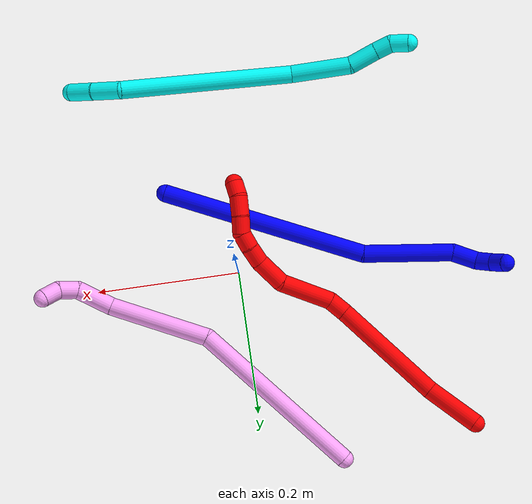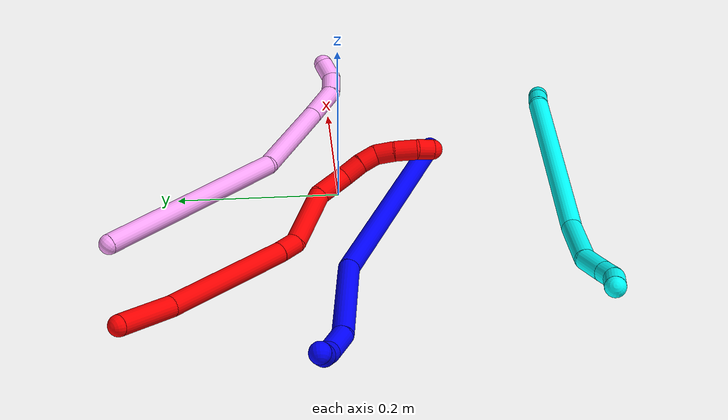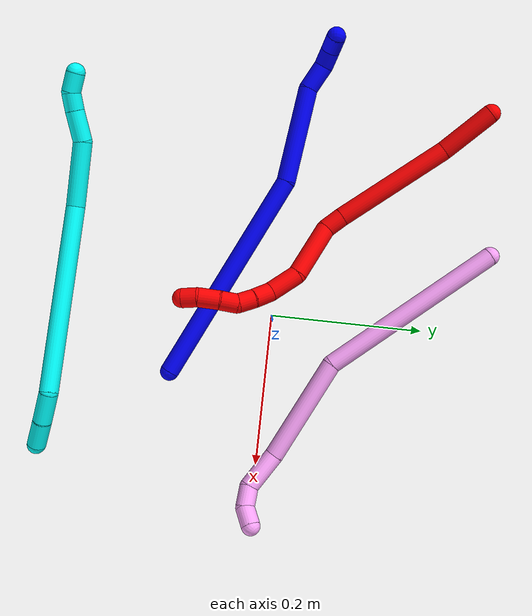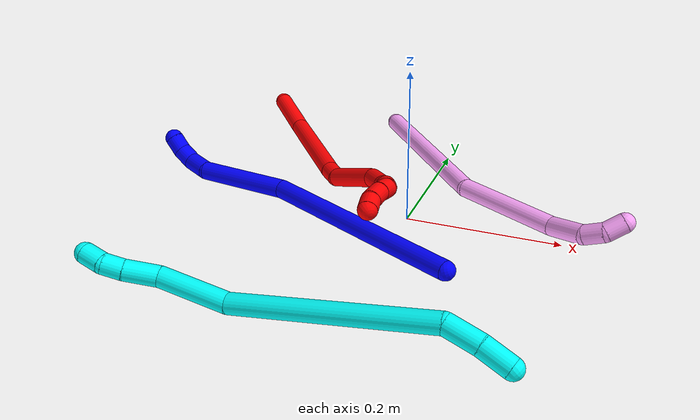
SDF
<sdf version="1.7">
 <world name="default">
  <plugin name="TubeGeneratorPlugin" filename="libtube_generator_plugin.so"/>
  <model name="photoneo_s_sensor">
   <static>1</static>
   <pose>0 0 2 1.57079 1.57079 3.14159</pose>
   <link name="link">
    <inertial><mass>0.1</mass></inertial>
    <sensor name="sensor" type="depth">
     <update_rate>30</update_rate>
     <camera>
      <horizontal_fov>1.22</horizontal_fov>
      <image><width>1920</width><height>1200</height><format>B8G8R8</format></image>
      <clip><near>0.1</near><far>4</far></clip>
      <depth_camera><output>points</output></depth_camera>
     </camera>
     <plugin name="camera_plugin" filename="libgazebo_ros_depth_camera.so">
      <baseline>0.2</baseline>
      <alwaysOn>1</alwaysOn>
      <updateRate>0.0</updateRate>
      <cameraName>camera_ir</cameraName>
      <imageTopicName>/camera/color/image_raw</imageTopicName>
      <cameraInfoTopicName>/camera/color/camera_info</cameraInfoTopicName>
      <depthImageTopicName>/camera/depth/image_raw</depthImageTopicName>
      <depthImageCameraInfoTopicName>/camera/depth/camera_info</depthImageCameraInfoTopicName>
      <pointCloudTopicName>/camera/depth/points</pointCloudTopicName>
      <frameName>fr_optical</frameName>
      <pointCloudCutoff>0.1</pointCloudCutoff>
      <pointCloudCutoffMax>2.0</pointCloudCutoffMax>
      <distortionK1>0</distortionK1>
      <distortionK2>0</distortionK2>
      <distortionK3>0</distortionK3>
      <distortionT1>0</distortionT1>
      <distortionT2>0</distortionT2>
      <CxPrime>0</CxPrime>
      <Cx>0</Cx>
      <Cy>0</Cy>
      <focalLength>0</focalLength>
      <hackBaseline>0</hackBaseline>
     </plugin>
    </sensor>
   </link>
  </model>
  <gravity>0 0 -9.8</gravity>
  <magnetic_field>6e-06 2.3e-05 -4.2e-05</magnetic_field>
  <atmosphere type="adiabatic"/>
  <physics name="default_physics" default="0" type="ode">
   <max_step_size>0.003</max_step_size>
   <real_time_factor>1</real_time_factor>
   <real_time_update_rate>1000</real_time_update_rate>
   <max_contacts>10000</max_contacts>
   <ode>
    <solver>
     <type>quick</type>
     <iters>100</iters>
     <sor>1.3</sor>
     <use_dynamic_moi_rescaling>0</use_dynamic_moi_rescaling>
    </solver>
    <constraints>
     <contact_max_correcting_vel>0</contact_max_correcting_vel>
     <contact_surface_layer>0.001</contact_surface_layer>
     <cfm>0</cfm>
     <erp>0.2</erp>
    </constraints>
   </ode>
  </physics>
  <scene><ambient>0.4 0.4 0.4 1</ambient><background>0.7 0.7 0.7 1</background><shadows>0</shadows></scene>
  <audio><device>default</device></audio>
  <spherical_coordinates>
   <surface_model>EARTH_WGS84</surface_model>
   <latitude_deg>0</latitude_deg>
   <longitude_deg>0</longitude_deg>
   <elevation>0</elevation>
   <heading_deg>0</heading_deg>
  </spherical_coordinates>
  <model name="bin">
   <static>1</static>
   <link name="bottom">
    <collision name="collision-bottom">
     <pose>0 0 -0.01 0 -0 0</pose>
     <geometry><box><size>0.8 0.6 0.02</size></box></geometry>
     <surface>
      <friction><ode><mu>100</mu><mu2>100</mu2></ode></friction>
      <contact><collide_bitmask>65535</collide_bitmask></contact>
     </surface>
    </collision>
   </link>
   <link name="west_wall">
    <collision name="collision-west_wall">
     <pose>-0.41 0 0.1 0 -0 0</pose>
     <geometry><box><size>0.02 0.6 0.2</size></box></geometry>
     <surface>
      <friction><ode><mu>100</mu><mu2>100</mu2></ode></friction>
      <contact><collide_bitmask>65535</collide_bitmask></contact>
     </surface>
    </collision>
   </link>
   <link name="east_wall">
    <collision name="collision-east_wall">
     <pose>0.41 0 0.1 0 -0 0</pose>
     <geometry><box><size>0.02 0.6 0.2</size></box></geometry>
     <surface>
      <friction><ode><mu>100</mu><mu2>100</mu2></ode></friction>
      <contact><collide_bitmask>65535</collide_bitmask></contact>
     </surface>
    </collision>
   </link>
   <link name="south_wall">
    <collision name="collision-south_wall">
     <pose>0 -0.31 0.1 0 -0 0</pose>
     <geometry><box><size>0.8 0.02 0.2</size></box></geometry>
     <surface>
      <friction><ode><mu>100</mu><mu2>100</mu2></ode></friction>
      <contact><collide_bitmask>65535</collide_bitmask></contact>
     </surface>
    </collision>
   </link>
   <link name="north_wall">
    <collision name="collision-north_wall">
     <pose>0 0.31 0.1 0 -0 0</pose>
     <geometry><box><size>0.8 0.02 0.2</size></box></geometry>
     <surface>
      <friction><ode><mu>100</mu><mu2>100</mu2></ode></friction>
      <contact><collide_bitmask>65535</collide_bitmask></contact>
     </surface>
    </collision>
   </link>
  </model>
  <model name="1">
   <static>0</static>
   <link name="1">
    <collision name="collision-cylinder-e_1_1_4">
     <pose>-0.061582 0.050715 0.123086 -0.39083 -0.433272 0.087075</pose>
     <geometry><cylinder><radius>0.0125</radius><length>0.293357</length></cylinder></geometry>
     <surface>
      <friction><ode><mu>1.16</mu><mu2>1.16</mu2><slip1>0</slip1><slip2>0</slip2></ode></friction>
      <contact><ode><kp>1e+06</kp><kd>1</kd><max_vel>0</max_vel><min_depth>0.001</min_depth></ode></contact>
     </surface>
    </collision>
    <visual name="visual-cylinder-e_1_1_4">
     <pose>-0.061582 0.050715 0.123086 -0.39083 -0.433272 0.087075</pose>
     <geometry><cylinder><radius>0.0125</radius><length>0.293357</length></cylinder></geometry>
     <material><ambient>0 0 1 1</ambient></material>
    </visual>
    <collision name="collision-cylinder-e_2_4_5">
     <pose>-0.130535 0.125068 0.304031 -0.387868 -0.117395 0.023082</pose>
     <geometry><cylinder><radius>0.0125</radius><length>0.125868</length></cylinder></geometry>
     <surface>
      <friction><ode><mu>1.16</mu><mu2>1.16</mu2><slip1>0</slip1><slip2>0</slip2></ode></friction>
      <contact><ode><kp>1e+06</kp><kd>1</kd><max_vel>0</max_vel><min_depth>0.001</min_depth></ode></contact>
     </surface>
    </collision>
    <visual name="visual-cylinder-e_2_4_5">
     <pose>-0.130535 0.125068 0.304031 -0.387868 -0.117395 0.023082</pose>
     <geometry><cylinder><radius>0.0125</radius><length>0.125868</length></cylinder></geometry>
     <material><ambient>0 0 1 1</ambient></material>
    </visual>
    <collision name="collision-cylinder-e_3_5_6">
     <pose>-0.146173 0.155853 0.376236 -0.462123 -0.476144 0.114061</pose>
     <geometry><cylinder><radius>0.0125</radius><length>0.03607</length></cylinder></geometry>
     <surface>
      <friction><ode><mu>1.16</mu><mu2>1.16</mu2><slip1>0</slip1><slip2>0</slip2></ode></friction>
      <contact><ode><kp>1e+06</kp><kd>1</kd><max_vel>0</max_vel><min_depth>0.001</min_depth></ode></contact>
     </surface>
    </collision>
    <visual name="visual-cylinder-e_3_5_6">
     <pose>-0.146173 0.155853 0.376236 -0.462123 -0.476144 0.114061</pose>
     <geometry><cylinder><radius>0.0125</radius><length>0.03607</length></cylinder></geometry>
     <material><ambient>0 0 1 1</ambient></material>
    </visual>
    <collision name="collision-cylinder-e_4_6_7">
     <pose>-0.157507 0.171633 0.397401 -0.902405 -0.271995 0.132417</pose>
     <geometry><cylinder><radius>0.0125</radius><length>0.02284</length></cylinder></geometry>
     <surface>
      <friction><ode><mu>1.16</mu><mu2>1.16</mu2><slip1>0</slip1><slip2>0</slip2></ode></friction>
      <contact><ode><kp>1e+06</kp><kd>1</kd><max_vel>0</max_vel><min_depth>0.001</min_depth></ode></contact>
     </surface>
    </collision>
    <visual name="visual-cylinder-e_4_6_7">
     <pose>-0.157507 0.171633 0.397401 -0.902405 -0.271995 0.132417</pose>
     <geometry><cylinder><radius>0.0125</radius><length>0.02284</length></cylinder></geometry>
     <material><ambient>0 0 1 1</ambient></material>
    </visual>
    <collision name="collision-cylinder-e_5_7_2">
     <pose>-0.162929 0.190188 0.40816 -1.19259 -0.217012 0.147601</pose>
     <geometry><cylinder><radius>0.0125</radius><length>0.021865</length></cylinder></geometry>
     <surface>
      <friction><ode><mu>1.16</mu><mu2>1.16</mu2><slip1>0</slip1><slip2>0</slip2></ode></friction>
      <contact><ode><kp>1e+06</kp><kd>1</kd><max_vel>0</max_vel><min_depth>0.001</min_depth></ode></contact>
     </surface>
    </collision>
    <visual name="visual-cylinder-e_5_7_2">
     <pose>-0.162929 0.190188 0.40816 -1.19259 -0.217012 0.147601</pose>
     <geometry><cylinder><radius>0.0125</radius><length>0.021865</length></cylinder></geometry>
     <material><ambient>0 0 1 1</ambient></material>
    </visual>
    <collision name="collision-sphere-2">
     <pose>-0.165283 0.20011 0.412103 0 -0 0</pose>
     <geometry><sphere><radius>0.0125</radius></sphere></geometry>
     <surface>
      <friction><ode><mu>1.16</mu><mu2>1.16</mu2><slip1>0</slip1><slip2>0</slip2></ode></friction>
      <contact><ode><kp>1e+06</kp><kd>1</kd><max_vel>0</max_vel><min_depth>0.001</min_depth></ode></contact>
     </surface>
    </collision>
    <visual name="visual-sphere-2">
     <pose>-0.165283 0.20011 0.412103 0 -0 0</pose>
     <geometry><sphere><radius>0.0125</radius></sphere></geometry>
     <material><ambient>0 0 1 1</ambient></material>
    </visual>
    <collision name="collision-sphere-7">
     <pose>-0.160575 0.180266 0.404218 0 -0 0</pose>
     <geometry><sphere><radius>0.0125</radius></sphere></geometry>
     <surface>
      <friction><ode><mu>1.16</mu><mu2>1.16</mu2><slip1>0</slip1><slip2>0</slip2></ode></friction>
      <contact><ode><kp>1e+06</kp><kd>1</kd><max_vel>0</max_vel><min_depth>0.001</min_depth></ode></contact>
     </surface>
    </collision>
    <visual name="visual-sphere-7">
     <pose>-0.160575 0.180266 0.404218 0 -0 0</pose>
     <geometry><sphere><radius>0.0125</radius></sphere></geometry>
     <material><ambient>0 0 1 1</ambient></material>
    </visual>
    <collision name="collision-sphere-6">
     <pose>-0.154439 0.163 0.390584 0 -0 0</pose>
     <geometry><sphere><radius>0.0125</radius></sphere></geometry>
     <surface>
      <friction><ode><mu>1.16</mu><mu2>1.16</mu2><slip1>0</slip1><slip2>0</slip2></ode></friction>
      <contact><ode><kp>1e+06</kp><kd>1</kd><max_vel>0</max_vel><min_depth>0.001</min_depth></ode></contact>
     </surface>
    </collision>
    <visual name="visual-sphere-6">
     <pose>-0.154439 0.163 0.390584 0 -0 0</pose>
     <geometry><sphere><radius>0.0125</radius></sphere></geometry>
     <material><ambient>0 0 1 1</ambient></material>
    </visual>
    <collision name="collision-sphere-5">
     <pose>-0.137906 0.148707 0.361889 0 -0 0</pose>
     <geometry><sphere><radius>0.0125</radius></sphere></geometry>
     <surface>
      <friction><ode><mu>1.16</mu><mu2>1.16</mu2><slip1>0</slip1><slip2>0</slip2></ode></friction>
      <contact><ode><kp>1e+06</kp><kd>1</kd><max_vel>0</max_vel><min_depth>0.001</min_depth></ode></contact>
     </surface>
    </collision>
    <visual name="visual-sphere-5">
     <pose>-0.137906 0.148707 0.361889 0 -0 0</pose>
     <geometry><sphere><radius>0.0125</radius></sphere></geometry>
     <material><ambient>0 0 1 1</ambient></material>
    </visual>
    <collision name="collision-sphere-1">
     <geometry><sphere><radius>0.0125</radius></sphere></geometry>
     <surface>
      <friction><ode><mu>1.16</mu><mu2>1.16</mu2><slip1>0</slip1><slip2>0</slip2></ode></friction>
      <contact><ode><kp>1e+06</kp><kd>1</kd><max_vel>0</max_vel><min_depth>0.001</min_depth></ode></contact>
     </surface>
    </collision>
    <visual name="visual-sphere-1">
     <geometry><sphere><radius>0.0125</radius></sphere></geometry>
     <material><ambient>0 0 1 1</ambient></material>
    </visual>
    <collision name="collision-sphere-4">
     <pose>-0.123164 0.10143 0.246173 0 -0 0</pose>
     <geometry><sphere><radius>0.0125</radius></sphere></geometry>
     <surface>
      <friction><ode><mu>1.16</mu><mu2>1.16</mu2><slip1>0</slip1><slip2>0</slip2></ode></friction>
      <contact><ode><kp>1e+06</kp><kd>1</kd><max_vel>0</max_vel><min_depth>0.001</min_depth></ode></contact>
     </surface>
    </collision>
    <visual name="visual-sphere-4">
     <pose>-0.123164 0.10143 0.246173 0 -0 0</pose>
     <geometry><sphere><radius>0.0125</radius></sphere></geometry>
     <material><ambient>0 0 1 1</ambient></material>
    </visual>
    <inertial>
     <pose>-0.093856 0.08864 0.211896 0 -0 0</pose>
     <mass>0.5</mass>
     <inertia>
      <ixx>0.00225</ixx>
      <ixy>0</ixy>
      <ixz>0</ixz>
      <iyy>0.002331</iyy>
      <iyz>0</iyz>
      <izz>0.000143</izz>
     </inertia>
    </inertial>
   </link>
   <pose>0.087214 -0.125843 0.012425 1.9583 -0.008489 -1.58088</pose>
  </model>
  <model name="2">
   <static>0</static>
   <link name="2">
    <collision name="collision-cylinder-e_1_1_4">
     <pose>-0.003137 0.001466 -0.037999 -3.10304 -0.082315 2.26587</pose>
     <geometry><cylinder><radius>0.0125</radius><length>0.076312</length></cylinder></geometry>
     <surface>
      <friction><ode><mu>1.16</mu><mu2>1.16</mu2><slip1>0</slip1><slip2>0</slip2></ode></friction>
      <contact><ode><kp>1e+06</kp><kd>1</kd><max_vel>0</max_vel><min_depth>0.001</min_depth></ode></contact>
     </surface>
    </collision>
    <visual name="visual-cylinder-e_1_1_4">
     <pose>-0.003137 0.001466 -0.037999 -3.10304 -0.082315 2.26587</pose>
     <geometry><cylinder><radius>0.0125</radius><length>0.076312</length></cylinder></geometry>
     <material><ambient>1 0 0 1</ambient></material>
    </visual>
    <collision name="collision-cylinder-e_2_4_5">
     <pose>0.00393 0.00952 -0.155042 -3.05843 0.127955 -1.98965</pose>
     <geometry><cylinder><radius>0.0125</radius><length>0.159944</length></cylinder></geometry>
     <surface>
      <friction><ode><mu>1.16</mu><mu2>1.16</mu2><slip1>0</slip1><slip2>0</slip2></ode></friction>
      <contact><ode><kp>1e+06</kp><kd>1</kd><max_vel>0</max_vel><min_depth>0.001</min_depth></ode></contact>
     </surface>
    </collision>
    <visual name="visual-cylinder-e_2_4_5">
     <pose>0.00393 0.00952 -0.155042 -3.05843 0.127955 -1.98965</pose>
     <geometry><cylinder><radius>0.0125</radius><length>0.159944</length></cylinder></geometry>
     <material><ambient>1 0 0 1</ambient></material>
    </visual>
    <collision name="collision-cylinder-e_3_5_6">
     <pose>0.015832 0.018179 -0.247026 -2.98294 0.12872 -1.36255</pose>
     <geometry><cylinder><radius>0.0125</radius><length>0.026428</length></cylinder></geometry>
     <surface>
      <friction><ode><mu>1.16</mu><mu2>1.16</mu2><slip1>0</slip1><slip2>0</slip2></ode></friction>
      <contact><ode><kp>1e+06</kp><kd>1</kd><max_vel>0</max_vel><min_depth>0.001</min_depth></ode></contact>
     </surface>
    </collision>
    <visual name="visual-cylinder-e_3_5_6">
     <pose>0.015832 0.018179 -0.247026 -2.98294 0.12872 -1.36255</pose>
     <geometry><cylinder><radius>0.0125</radius><length>0.026428</length></cylinder></geometry>
     <material><ambient>1 0 0 1</ambient></material>
    </visual>
    <collision name="collision-cylinder-e_4_6_7">
     <pose>0.023065 0.042535 -0.290258 -2.50732 0.146207 -0.439061</pose>
     <geometry><cylinder><radius>0.0125</radius><length>0.076023</length></cylinder></geometry>
     <surface>
      <friction><ode><mu>1.16</mu><mu2>1.16</mu2><slip1>0</slip1><slip2>0</slip2></ode></friction>
      <contact><ode><kp>1e+06</kp><kd>1</kd><max_vel>0</max_vel><min_depth>0.001</min_depth></ode></contact>
     </surface>
    </collision>
    <visual name="visual-cylinder-e_4_6_7">
     <pose>0.023065 0.042535 -0.290258 -2.50732 0.146207 -0.439061</pose>
     <geometry><cylinder><radius>0.0125</radius><length>0.076023</length></cylinder></geometry>
     <material><ambient>1 0 0 1</ambient></material>
    </visual>
    <collision name="collision-cylinder-e_5_7_8">
     <pose>0.034946 0.069238 -0.340086 -2.91921 0.306676 -1.89037</pose>
     <geometry><cylinder><radius>0.0125</radius><length>0.042021</length></cylinder></geometry>
     <surface>
      <friction><ode><mu>1.16</mu><mu2>1.16</mu2><slip1>0</slip1><slip2>0</slip2></ode></friction>
      <contact><ode><kp>1e+06</kp><kd>1</kd><max_vel>0</max_vel><min_depth>0.001</min_depth></ode></contact>
     </surface>
    </collision>
    <visual name="visual-cylinder-e_5_7_8">
     <pose>0.034946 0.069238 -0.340086 -2.91921 0.306676 -1.89037</pose>
     <geometry><cylinder><radius>0.0125</radius><length>0.042021</length></cylinder></geometry>
     <material><ambient>1 0 0 1</ambient></material>
    </visual>
    <collision name="collision-cylinder-e_6_8_9">
     <pose>0.048566 0.076026 -0.369918 -2.91525 0.603153 -2.44098</pose>
     <geometry><cylinder><radius>0.0125</radius><length>0.025657</length></cylinder></geometry>
     <surface>
      <friction><ode><mu>1.16</mu><mu2>1.16</mu2><slip1>0</slip1><slip2>0</slip2></ode></friction>
      <contact><ode><kp>1e+06</kp><kd>1</kd><max_vel>0</max_vel><min_depth>0.001</min_depth></ode></contact>
     </surface>
    </collision>
    <visual name="visual-cylinder-e_6_8_9">
     <pose>0.048566 0.076026 -0.369918 -2.91525 0.603153 -2.44098</pose>
     <geometry><cylinder><radius>0.0125</radius><length>0.025657</length></cylinder></geometry>
     <material><ambient>1 0 0 1</ambient></material>
    </visual>
    <collision name="collision-cylinder-e_7_9_10">
     <pose>0.061907 0.079039 -0.389628 -3.07355 0.57121 -2.9108</pose>
     <geometry><cylinder><radius>0.0125</radius><length>0.022435</length></cylinder></geometry>
     <surface>
      <friction><ode><mu>1.16</mu><mu2>1.16</mu2><slip1>0</slip1><slip2>0</slip2></ode></friction>
      <contact><ode><kp>1e+06</kp><kd>1</kd><max_vel>0</max_vel><min_depth>0.001</min_depth></ode></contact>
     </surface>
    </collision>
    <visual name="visual-cylinder-e_7_9_10">
     <pose>0.061907 0.079039 -0.389628 -3.07355 0.57121 -2.9108</pose>
     <geometry><cylinder><radius>0.0125</radius><length>0.022435</length></cylinder></geometry>
     <material><ambient>1 0 0 1</ambient></material>
    </visual>
    <collision name="collision-cylinder-e_8_10_11">
     <pose>0.075889 0.075488 -0.406682 2.63962 0.737511 1.96999</pose>
     <geometry><cylinder><radius>0.0125</radius><length>0.023547</length></cylinder></geometry>
     <surface>
      <friction><ode><mu>1.16</mu><mu2>1.16</mu2><slip1>0</slip1><slip2>0</slip2></ode></friction>
      <contact><ode><kp>1e+06</kp><kd>1</kd><max_vel>0</max_vel><min_depth>0.001</min_depth></ode></contact>
     </surface>
    </collision>
    <visual name="visual-cylinder-e_8_10_11">
     <pose>0.075889 0.075488 -0.406682 2.63962 0.737511 1.96999</pose>
     <geometry><cylinder><radius>0.0125</radius><length>0.023547</length></cylinder></geometry>
     <material><ambient>1 0 0 1</ambient></material>
    </visual>
    <collision name="collision-cylinder-e_9_11_12">
     <pose>0.091393 0.065582 -0.424307 2.62196 0.583013 1.69163</pose>
     <geometry><cylinder><radius>0.0125</radius><length>0.027563</length></cylinder></geometry>
     <surface>
      <friction><ode><mu>1.16</mu><mu2>1.16</mu2><slip1>0</slip1><slip2>0</slip2></ode></friction>
      <contact><ode><kp>1e+06</kp><kd>1</kd><max_vel>0</max_vel><min_depth>0.001</min_depth></ode></contact>
     </surface>
    </collision>
    <visual name="visual-cylinder-e_9_11_12">
     <pose>0.091393 0.065582 -0.424307 2.62196 0.583013 1.69163</pose>
     <geometry><cylinder><radius>0.0125</radius><length>0.027563</length></cylinder></geometry>
     <material><ambient>1 0 0 1</ambient></material>
    </visual>
    <collision name="collision-cylinder-e_10_12_2">
     <pose>0.102023 0.055875 -0.442982 2.71076 0.308031 1.23415</pose>
     <geometry><cylinder><radius>0.0125</radius><length>0.020071</length></cylinder></geometry>
     <surface>
      <friction><ode><mu>1.16</mu><mu2>1.16</mu2><slip1>0</slip1><slip2>0</slip2></ode></friction>
      <contact><ode><kp>1e+06</kp><kd>1</kd><max_vel>0</max_vel><min_depth>0.001</min_depth></ode></contact>
     </surface>
    </collision>
    <visual name="visual-cylinder-e_10_12_2">
     <pose>0.102023 0.055875 -0.442982 2.71076 0.308031 1.23415</pose>
     <geometry><cylinder><radius>0.0125</radius><length>0.020071</length></cylinder></geometry>
     <material><ambient>1 0 0 1</ambient></material>
    </visual>
    <collision name="collision-sphere-2">
     <pose>0.105065 0.051881 -0.451672 0 -0 0</pose>
     <geometry><sphere><radius>0.0125</radius></sphere></geometry>
     <surface>
      <friction><ode><mu>1.16</mu><mu2>1.16</mu2><slip1>0</slip1><slip2>0</slip2></ode></friction>
      <contact><ode><kp>1e+06</kp><kd>1</kd><max_vel>0</max_vel><min_depth>0.001</min_depth></ode></contact>
     </surface>
    </collision>
    <visual name="visual-sphere-2">
     <pose>0.105065 0.051881 -0.451672 0 -0 0</pose>
     <geometry><sphere><radius>0.0125</radius></sphere></geometry>
     <material><ambient>1 0 0 1</ambient></material>
    </visual>
    <collision name="collision-sphere-12">
     <pose>0.09898 0.059869 -0.434293 0 -0 0</pose>
     <geometry><sphere><radius>0.0125</radius></sphere></geometry>
     <surface>
      <friction><ode><mu>1.16</mu><mu2>1.16</mu2><slip1>0</slip1><slip2>0</slip2></ode></friction>
      <contact><ode><kp>1e+06</kp><kd>1</kd><max_vel>0</max_vel><min_depth>0.001</min_depth></ode></contact>
     </surface>
    </collision>
    <visual name="visual-sphere-12">
     <pose>0.09898 0.059869 -0.434293 0 -0 0</pose>
     <geometry><sphere><radius>0.0125</radius></sphere></geometry>
     <material><ambient>1 0 0 1</ambient></material>
    </visual>
    <collision name="collision-sphere-11">
     <pose>0.083806 0.071295 -0.414321 0 -0 0</pose>
     <geometry><sphere><radius>0.0125</radius></sphere></geometry>
     <surface>
      <friction><ode><mu>1.16</mu><mu2>1.16</mu2><slip1>0</slip1><slip2>0</slip2></ode></friction>
      <contact><ode><kp>1e+06</kp><kd>1</kd><max_vel>0</max_vel><min_depth>0.001</min_depth></ode></contact>
     </surface>
    </collision>
    <visual name="visual-sphere-11">
     <pose>0.083806 0.071295 -0.414321 0 -0 0</pose>
     <geometry><sphere><radius>0.0125</radius></sphere></geometry>
     <material><ambient>1 0 0 1</ambient></material>
    </visual>
    <collision name="collision-sphere-10">
     <pose>0.067972 0.07968 -0.399043 0 -0 0</pose>
     <geometry><sphere><radius>0.0125</radius></sphere></geometry>
     <surface>
      <friction><ode><mu>1.16</mu><mu2>1.16</mu2><slip1>0</slip1><slip2>0</slip2></ode></friction>
      <contact><ode><kp>1e+06</kp><kd>1</kd><max_vel>0</max_vel><min_depth>0.001</min_depth></ode></contact>
     </surface>
    </collision>
    <visual name="visual-sphere-10">
     <pose>0.067972 0.07968 -0.399043 0 -0 0</pose>
     <geometry><sphere><radius>0.0125</radius></sphere></geometry>
     <material><ambient>1 0 0 1</ambient></material>
    </visual>
    <collision name="collision-sphere-9">
     <pose>0.055843 0.078397 -0.380214 0 -0 0</pose>
     <geometry><sphere><radius>0.0125</radius></sphere></geometry>
     <surface>
      <friction><ode><mu>1.16</mu><mu2>1.16</mu2><slip1>0</slip1><slip2>0</slip2></ode></friction>
      <contact><ode><kp>1e+06</kp><kd>1</kd><max_vel>0</max_vel><min_depth>0.001</min_depth></ode></contact>
     </surface>
    </collision>
    <visual name="visual-sphere-9">
     <pose>0.055843 0.078397 -0.380214 0 -0 0</pose>
     <geometry><sphere><radius>0.0125</radius></sphere></geometry>
     <material><ambient>1 0 0 1</ambient></material>
    </visual>
    <collision name="collision-sphere-4">
     <pose>-0.006275 0.002931 -0.075997 0 -0 0</pose>
     <geometry><sphere><radius>0.0125</radius></sphere></geometry>
     <surface>
      <friction><ode><mu>1.16</mu><mu2>1.16</mu2><slip1>0</slip1><slip2>0</slip2></ode></friction>
      <contact><ode><kp>1e+06</kp><kd>1</kd><max_vel>0</max_vel><min_depth>0.001</min_depth></ode></contact>
     </surface>
    </collision>
    <visual name="visual-sphere-4">
     <pose>-0.006275 0.002931 -0.075997 0 -0 0</pose>
     <geometry><sphere><radius>0.0125</radius></sphere></geometry>
     <material><ambient>1 0 0 1</ambient></material>
    </visual>
    <collision name="collision-sphere-1">
     <geometry><sphere><radius>0.0125</radius></sphere></geometry>
     <surface>
      <friction><ode><mu>1.16</mu><mu2>1.16</mu2><slip1>0</slip1><slip2>0</slip2></ode></friction>
      <contact><ode><kp>1e+06</kp><kd>1</kd><max_vel>0</max_vel><min_depth>0.001</min_depth></ode></contact>
     </surface>
    </collision>
    <visual name="visual-sphere-1">
     <geometry><sphere><radius>0.0125</radius></sphere></geometry>
     <material><ambient>1 0 0 1</ambient></material>
    </visual>
    <collision name="collision-sphere-8">
     <pose>0.041289 0.073655 -0.359623 0 -0 0</pose>
     <geometry><sphere><radius>0.0125</radius></sphere></geometry>
     <surface>
      <friction><ode><mu>1.16</mu><mu2>1.16</mu2><slip1>0</slip1><slip2>0</slip2></ode></friction>
      <contact><ode><kp>1e+06</kp><kd>1</kd><max_vel>0</max_vel><min_depth>0.001</min_depth></ode></contact>
     </surface>
    </collision>
    <visual name="visual-sphere-8">
     <pose>0.041289 0.073655 -0.359623 0 -0 0</pose>
     <geometry><sphere><radius>0.0125</radius></sphere></geometry>
     <material><ambient>1 0 0 1</ambient></material>
    </visual>
    <collision name="collision-sphere-5">
     <pose>0.014135 0.016109 -0.234086 0 -0 0</pose>
     <geometry><sphere><radius>0.0125</radius></sphere></geometry>
     <surface>
      <friction><ode><mu>1.16</mu><mu2>1.16</mu2><slip1>0</slip1><slip2>0</slip2></ode></friction>
      <contact><ode><kp>1e+06</kp><kd>1</kd><max_vel>0</max_vel><min_depth>0.001</min_depth></ode></contact>
     </surface>
    </collision>
    <visual name="visual-sphere-5">
     <pose>0.014135 0.016109 -0.234086 0 -0 0</pose>
     <geometry><sphere><radius>0.0125</radius></sphere></geometry>
     <material><ambient>1 0 0 1</ambient></material>
    </visual>
    <collision name="collision-sphere-6">
     <pose>0.017528 0.02025 -0.259966 0 -0 0</pose>
     <geometry><sphere><radius>0.0125</radius></sphere></geometry>
     <surface>
      <friction><ode><mu>1.16</mu><mu2>1.16</mu2><slip1>0</slip1><slip2>0</slip2></ode></friction>
      <contact><ode><kp>1e+06</kp><kd>1</kd><max_vel>0</max_vel><min_depth>0.001</min_depth></ode></contact>
     </surface>
    </collision>
    <visual name="visual-sphere-6">
     <pose>0.017528 0.02025 -0.259966 0 -0 0</pose>
     <geometry><sphere><radius>0.0125</radius></sphere></geometry>
     <material><ambient>1 0 0 1</ambient></material>
    </visual>
    <collision name="collision-sphere-7">
     <pose>0.028603 0.06482 -0.320549 0 -0 0</pose>
     <geometry><sphere><radius>0.0125</radius></sphere></geometry>
     <surface>
      <friction><ode><mu>1.16</mu><mu2>1.16</mu2><slip1>0</slip1><slip2>0</slip2></ode></friction>
      <contact><ode><kp>1e+06</kp><kd>1</kd><max_vel>0</max_vel><min_depth>0.001</min_depth></ode></contact>
     </surface>
    </collision>
    <visual name="visual-sphere-7">
     <pose>0.028603 0.06482 -0.320549 0 -0 0</pose>
     <geometry><sphere><radius>0.0125</radius></sphere></geometry>
     <material><ambient>1 0 0 1</ambient></material>
    </visual>
    <inertial>
     <pose>0.026036 0.033377 -0.237955 0 -0 0</pose>
     <mass>0.5</mass>
     <inertia>
      <ixx>-0.000434</ixx>
      <ixy>0</ixy>
      <ixz>0</ixz>
      <iyy>-0.000152</iyy>
      <iyz>0</iyz>
      <izz>-0.000144</izz>
     </inertia>
    </inertial>
   </link>
   <pose>-0.292599 0.255623 0.031115 1.28909 -0.911422 -2.22363</pose>
  </model>
  <model name="3">
   <static>0</static>
   <link name="3">
    <collision name="collision-cylinder-e_1_1_4">
     <pose>-0.006401 -0.00142 -0.017113 3.05882 -0.356825 -2.69013</pose>
     <geometry><cylinder><radius>0.0125</radius><length>0.036651</length></cylinder></geometry>
     <surface>
      <friction><ode><mu>1.16</mu><mu2>1.16</mu2><slip1>0</slip1><slip2>0</slip2></ode></friction>
      <contact><ode><kp>1e+06</kp><kd>1</kd><max_vel>0</max_vel><min_depth>0.001</min_depth></ode></contact>
     </surface>
    </collision>
    <visual name="visual-cylinder-e_1_1_4">
     <pose>-0.006401 -0.00142 -0.017113 3.05882 -0.356825 -2.69013</pose>
     <geometry><cylinder><radius>0.0125</radius><length>0.036651</length></cylinder></geometry>
     <material><ambient>0.003922 1 0.996078 1</ambient></material>
    </visual>
    <collision name="collision-cylinder-e_2_4_5">
     <pose>-0.0222 -0.003684 -0.05286 3.09628 -0.466687 -2.95149</pose>
     <geometry><cylinder><radius>0.0125</radius><length>0.041776</length></cylinder></geometry>
     <surface>
      <friction><ode><mu>1.16</mu><mu2>1.16</mu2><slip1>0</slip1><slip2>0</slip2></ode></friction>
      <contact><ode><kp>1e+06</kp><kd>1</kd><max_vel>0</max_vel><min_depth>0.001</min_depth></ode></contact>
     </surface>
    </collision>
    <visual name="visual-cylinder-e_2_4_5">
     <pose>-0.0222 -0.003684 -0.05286 3.09628 -0.466687 -2.95149</pose>
     <geometry><cylinder><radius>0.0125</radius><length>0.041776</length></cylinder></geometry>
     <material><ambient>0.003922 1 0.996078 1</ambient></material>
    </visual>
    <collision name="collision-cylinder-e_3_5_6">
     <pose>-0.125739 0.010885 -0.148546 -2.94414 -0.875261 2.72438</pose>
     <geometry><cylinder><radius>0.0125</radius><length>0.245249</length></cylinder></geometry>
     <surface>
      <friction><ode><mu>1.16</mu><mu2>1.16</mu2><slip1>0</slip1><slip2>0</slip2></ode></friction>
      <contact><ode><kp>1e+06</kp><kd>1</kd><max_vel>0</max_vel><min_depth>0.001</min_depth></ode></contact>
     </surface>
    </collision>
    <visual name="visual-cylinder-e_3_5_6">
     <pose>-0.125739 0.010885 -0.148546 -2.94414 -0.875261 2.72438</pose>
     <geometry><cylinder><radius>0.0125</radius><length>0.245249</length></cylinder></geometry>
     <material><ambient>0.003922 1 0.996078 1</ambient></material>
    </visual>
    <collision name="collision-cylinder-e_4_6_7">
     <pose>-0.243432 0.030351 -0.261354 -3.02876 -0.579536 2.76721</pose>
     <geometry><cylinder><radius>0.0125</radius><length>0.086018</length></cylinder></geometry>
     <surface>
      <friction><ode><mu>1.16</mu><mu2>1.16</mu2><slip1>0</slip1><slip2>0</slip2></ode></friction>
      <contact><ode><kp>1e+06</kp><kd>1</kd><max_vel>0</max_vel><min_depth>0.001</min_depth></ode></contact>
     </surface>
    </collision>
    <visual name="visual-cylinder-e_4_6_7">
     <pose>-0.243432 0.030351 -0.261354 -3.02876 -0.579536 2.76721</pose>
     <geometry><cylinder><radius>0.0125</radius><length>0.086018</length></cylinder></geometry>
     <material><ambient>0.003922 1 0.996078 1</ambient></material>
    </visual>
    <collision name="collision-cylinder-e_5_7_8">
     <pose>-0.276101 0.043309 -0.313059 -2.63225 -0.4629 1.47148</pose>
     <geometry><cylinder><radius>0.0125</radius><length>0.040829</length></cylinder></geometry>
     <surface>
      <friction><ode><mu>1.16</mu><mu2>1.16</mu2><slip1>0</slip1><slip2>0</slip2></ode></friction>
      <contact><ode><kp>1e+06</kp><kd>1</kd><max_vel>0</max_vel><min_depth>0.001</min_depth></ode></contact>
     </surface>
    </collision>
    <visual name="visual-cylinder-e_5_7_8">
     <pose>-0.276101 0.043309 -0.313059 -2.63225 -0.4629 1.47148</pose>
     <geometry><cylinder><radius>0.0125</radius><length>0.040829</length></cylinder></geometry>
     <material><ambient>0.003922 1 0.996078 1</ambient></material>
    </visual>
    <collision name="collision-cylinder-e_6_8_9">
     <pose>-0.289815 0.056525 -0.339136 -2.73937 -0.395604 1.55377</pose>
     <geometry><cylinder><radius>0.0125</radius><length>0.023859</length></cylinder></geometry>
     <surface>
      <friction><ode><mu>1.16</mu><mu2>1.16</mu2><slip1>0</slip1><slip2>0</slip2></ode></friction>
      <contact><ode><kp>1e+06</kp><kd>1</kd><max_vel>0</max_vel><min_depth>0.001</min_depth></ode></contact>
     </surface>
    </collision>
    <visual name="visual-cylinder-e_6_8_9">
     <pose>-0.289815 0.056525 -0.339136 -2.73937 -0.395604 1.55377</pose>
     <geometry><cylinder><radius>0.0125</radius><length>0.023859</length></cylinder></geometry>
     <material><ambient>0.003922 1 0.996078 1</ambient></material>
    </visual>
    <collision name="collision-cylinder-e_7_9_2">
     <pose>-0.300688 0.060213 -0.360415 3.08592 -0.512055 -2.92966</pose>
     <geometry><cylinder><radius>0.0125</radius><length>0.025618</length></cylinder></geometry>
     <surface>
      <friction><ode><mu>1.16</mu><mu2>1.16</mu2><slip1>0</slip1><slip2>0</slip2></ode></friction>
      <contact><ode><kp>1e+06</kp><kd>1</kd><max_vel>0</max_vel><min_depth>0.001</min_depth></ode></contact>
     </surface>
    </collision>
    <visual name="visual-cylinder-e_7_9_2">
     <pose>-0.300688 0.060213 -0.360415 3.08592 -0.512055 -2.92966</pose>
     <geometry><cylinder><radius>0.0125</radius><length>0.025618</length></cylinder></geometry>
     <material><ambient>0.003922 1 0.996078 1</ambient></material>
    </visual>
    <collision name="collision-sphere-2">
     <pose>-0.306964 0.059591 -0.371563 0 -0 0</pose>
     <geometry><sphere><radius>0.0125</radius></sphere></geometry>
     <surface>
      <friction><ode><mu>1.16</mu><mu2>1.16</mu2><slip1>0</slip1><slip2>0</slip2></ode></friction>
      <contact><ode><kp>1e+06</kp><kd>1</kd><max_vel>0</max_vel><min_depth>0.001</min_depth></ode></contact>
     </surface>
    </collision>
    <visual name="visual-sphere-2">
     <pose>-0.306964 0.059591 -0.371563 0 -0 0</pose>
     <geometry><sphere><radius>0.0125</radius></sphere></geometry>
     <material><ambient>0.003922 1 0.996078 1</ambient></material>
    </visual>
    <collision name="collision-sphere-9">
     <pose>-0.294412 0.060834 -0.349266 0 -0 0</pose>
     <geometry><sphere><radius>0.0125</radius></sphere></geometry>
     <surface>
      <friction><ode><mu>1.16</mu><mu2>1.16</mu2><slip1>0</slip1><slip2>0</slip2></ode></friction>
      <contact><ode><kp>1e+06</kp><kd>1</kd><max_vel>0</max_vel><min_depth>0.001</min_depth></ode></contact>
     </surface>
    </collision>
    <visual name="visual-sphere-9">
     <pose>-0.294412 0.060834 -0.349266 0 -0 0</pose>
     <geometry><sphere><radius>0.0125</radius></sphere></geometry>
     <material><ambient>0.003922 1 0.996078 1</ambient></material>
    </visual>
    <collision name="collision-sphere-4">
     <pose>-0.012802 -0.00284 -0.034225 0 -0 0</pose>
     <geometry><sphere><radius>0.0125</radius></sphere></geometry>
     <surface>
      <friction><ode><mu>1.16</mu><mu2>1.16</mu2><slip1>0</slip1><slip2>0</slip2></ode></friction>
      <contact><ode><kp>1e+06</kp><kd>1</kd><max_vel>0</max_vel><min_depth>0.001</min_depth></ode></contact>
     </surface>
    </collision>
    <visual name="visual-sphere-4">
     <pose>-0.012802 -0.00284 -0.034225 0 -0 0</pose>
     <geometry><sphere><radius>0.0125</radius></sphere></geometry>
     <material><ambient>0.003922 1 0.996078 1</ambient></material>
    </visual>
    <collision name="collision-sphere-1">
     <geometry><sphere><radius>0.0125</radius></sphere></geometry>
     <surface>
      <friction><ode><mu>1.16</mu><mu2>1.16</mu2><slip1>0</slip1><slip2>0</slip2></ode></friction>
      <contact><ode><kp>1e+06</kp><kd>1</kd><max_vel>0</max_vel><min_depth>0.001</min_depth></ode></contact>
     </surface>
    </collision>
    <visual name="visual-sphere-1">
     <geometry><sphere><radius>0.0125</radius></sphere></geometry>
     <material><ambient>0.003922 1 0.996078 1</ambient></material>
    </visual>
    <collision name="collision-sphere-8">
     <pose>-0.285217 0.052216 -0.329006 0 -0 0</pose>
     <geometry><sphere><radius>0.0125</radius></sphere></geometry>
     <surface>
      <friction><ode><mu>1.16</mu><mu2>1.16</mu2><slip1>0</slip1><slip2>0</slip2></ode></friction>
      <contact><ode><kp>1e+06</kp><kd>1</kd><max_vel>0</max_vel><min_depth>0.001</min_depth></ode></contact>
     </surface>
    </collision>
    <visual name="visual-sphere-8">
     <pose>-0.285217 0.052216 -0.329006 0 -0 0</pose>
     <geometry><sphere><radius>0.0125</radius></sphere></geometry>
     <material><ambient>0.003922 1 0.996078 1</ambient></material>
    </visual>
    <collision name="collision-sphere-5">
     <pose>-0.031599 -0.004529 -0.071495 0 -0 0</pose>
     <geometry><sphere><radius>0.0125</radius></sphere></geometry>
     <surface>
      <friction><ode><mu>1.16</mu><mu2>1.16</mu2><slip1>0</slip1><slip2>0</slip2></ode></friction>
      <contact><ode><kp>1e+06</kp><kd>1</kd><max_vel>0</max_vel><min_depth>0.001</min_depth></ode></contact>
     </surface>
    </collision>
    <visual name="visual-sphere-5">
     <pose>-0.031599 -0.004529 -0.071495 0 -0 0</pose>
     <geometry><sphere><radius>0.0125</radius></sphere></geometry>
     <material><ambient>0.003922 1 0.996078 1</ambient></material>
    </visual>
    <collision name="collision-sphere-6">
     <pose>-0.219879 0.026299 -0.225596 0 -0 0</pose>
     <geometry><sphere><radius>0.0125</radius></sphere></geometry>
     <surface>
      <friction><ode><mu>1.16</mu><mu2>1.16</mu2><slip1>0</slip1><slip2>0</slip2></ode></friction>
      <contact><ode><kp>1e+06</kp><kd>1</kd><max_vel>0</max_vel><min_depth>0.001</min_depth></ode></contact>
     </surface>
    </collision>
    <visual name="visual-sphere-6">
     <pose>-0.219879 0.026299 -0.225596 0 -0 0</pose>
     <geometry><sphere><radius>0.0125</radius></sphere></geometry>
     <material><ambient>0.003922 1 0.996078 1</ambient></material>
    </visual>
    <collision name="collision-sphere-7">
     <pose>-0.266985 0.034402 -0.297112 0 -0 0</pose>
     <geometry><sphere><radius>0.0125</radius></sphere></geometry>
     <surface>
      <friction><ode><mu>1.16</mu><mu2>1.16</mu2><slip1>0</slip1><slip2>0</slip2></ode></friction>
      <contact><ode><kp>1e+06</kp><kd>1</kd><max_vel>0</max_vel><min_depth>0.001</min_depth></ode></contact>
     </surface>
    </collision>
    <visual name="visual-sphere-7">
     <pose>-0.266985 0.034402 -0.297112 0 -0 0</pose>
     <geometry><sphere><radius>0.0125</radius></sphere></geometry>
     <material><ambient>0.003922 1 0.996078 1</ambient></material>
    </visual>
    <inertial>
     <pose>-0.157659 0.019467 -0.183708 0 -0 0</pose>
     <mass>0.5</mass>
     <inertia>
      <ixx>-0.000463</ixx>
      <ixy>0</ixy>
      <ixz>0</ixz>
      <iyy>0.001604</iyy>
      <iyz>0</iyz>
      <izz>0.000799</izz>
     </inertia>
    </inertial>
   </link>
   <pose>0.200351 -0.288502 0.020603 -3.12207 -0.824218 -0.147454</pose>
  </model>
  <model name="4">
   <static>0</static>
   <link name="4">
    <collision name="collision-cylinder-e_1_1_4">
     <pose>0.105458 -0.063294 -0.029101 2.00175 0.987021 1.39656</pose>
     <geometry><cylinder><radius>0.0125</radius><length>0.252779</length></cylinder></geometry>
     <surface>
      <friction><ode><mu>1.16</mu><mu2>1.16</mu2><slip1>0</slip1><slip2>0</slip2></ode></friction>
      <contact><ode><kp>1e+06</kp><kd>1</kd><max_vel>0</max_vel><min_depth>0.001</min_depth></ode></contact>
     </surface>
    </collision>
    <visual name="visual-cylinder-e_1_1_4">
     <pose>0.105458 -0.063294 -0.029101 2.00175 0.987021 1.39656</pose>
     <geometry><cylinder><radius>0.0125</radius><length>0.252779</length></cylinder></geometry>
     <material><ambient>1 0.65098 0.996078 1</ambient></material>
    </visual>
    <collision name="collision-cylinder-e_2_4_5">
     <pose>0.278246 -0.148371 -0.050283 1.22213 1.23926 0.926826</pose>
     <geometry><cylinder><radius>0.0125</radius><length>0.142417</length></cylinder></geometry>
     <surface>
      <friction><ode><mu>1.16</mu><mu2>1.16</mu2><slip1>0</slip1><slip2>0</slip2></ode></friction>
      <contact><ode><kp>1e+06</kp><kd>1</kd><max_vel>0</max_vel><min_depth>0.001</min_depth></ode></contact>
     </surface>
    </collision>
    <visual name="visual-cylinder-e_2_4_5">
     <pose>0.278246 -0.148371 -0.050283 1.22213 1.23926 0.926826</pose>
     <geometry><cylinder><radius>0.0125</radius><length>0.142417</length></cylinder></geometry>
     <material><ambient>1 0.65098 0.996078 1</ambient></material>
    </visual>
    <collision name="collision-cylinder-e_3_5_6">
     <pose>0.367271 -0.184208 -0.03965 1.38001 0.987542 0.836097</pose>
     <geometry><cylinder><radius>0.0125</radius><length>0.05198</length></cylinder></geometry>
     <surface>
      <friction><ode><mu>1.16</mu><mu2>1.16</mu2><slip1>0</slip1><slip2>0</slip2></ode></friction>
      <contact><ode><kp>1e+06</kp><kd>1</kd><max_vel>0</max_vel><min_depth>0.001</min_depth></ode></contact>
     </surface>
    </collision>
    <visual name="visual-cylinder-e_3_5_6">
     <pose>0.367271 -0.184208 -0.03965 1.38001 0.987542 0.836097</pose>
     <geometry><cylinder><radius>0.0125</radius><length>0.05198</length></cylinder></geometry>
     <material><ambient>1 0.65098 0.996078 1</ambient></material>
    </visual>
    <collision name="collision-cylinder-e_4_6_7">
     <pose>0.398832 -0.203645 -0.029263 0.611758 0.811158 0.269547</pose>
     <geometry><cylinder><radius>0.0125</radius><length>0.027219</length></cylinder></geometry>
     <surface>
      <friction><ode><mu>1.16</mu><mu2>1.16</mu2><slip1>0</slip1><slip2>0</slip2></ode></friction>
      <contact><ode><kp>1e+06</kp><kd>1</kd><max_vel>0</max_vel><min_depth>0.001</min_depth></ode></contact>
     </surface>
    </collision>
    <visual name="visual-cylinder-e_4_6_7">
     <pose>0.398832 -0.203645 -0.029263 0.611758 0.811158 0.269547</pose>
     <geometry><cylinder><radius>0.0125</radius><length>0.027219</length></cylinder></geometry>
     <material><ambient>1 0.65098 0.996078 1</ambient></material>
    </visual>
    <collision name="collision-cylinder-e_5_7_2">
     <pose>0.413849 -0.211487 -0.01013 0.2114 0.413862 0.044539</pose>
     <geometry><cylinder><radius>0.0125</radius><length>0.025605</length></cylinder></geometry>
     <surface>
      <friction><ode><mu>1.16</mu><mu2>1.16</mu2><slip1>0</slip1><slip2>0</slip2></ode></friction>
      <contact><ode><kp>1e+06</kp><kd>1</kd><max_vel>0</max_vel><min_depth>0.001</min_depth></ode></contact>
     </surface>
    </collision>
    <visual name="visual-cylinder-e_5_7_2">
     <pose>0.413849 -0.211487 -0.01013 0.2114 0.413862 0.044539</pose>
     <geometry><cylinder><radius>0.0125</radius><length>0.025605</length></cylinder></geometry>
     <material><ambient>1 0.65098 0.996078 1</ambient></material>
    </visual>
    <collision name="collision-sphere-2">
     <pose>0.418997 -0.213947 0.00133 0 -0 0</pose>
     <geometry><sphere><radius>0.0125</radius></sphere></geometry>
     <surface>
      <friction><ode><mu>1.16</mu><mu2>1.16</mu2><slip1>0</slip1><slip2>0</slip2></ode></friction>
      <contact><ode><kp>1e+06</kp><kd>1</kd><max_vel>0</max_vel><min_depth>0.001</min_depth></ode></contact>
     </surface>
    </collision>
    <visual name="visual-sphere-2">
     <pose>0.418997 -0.213947 0.00133 0 -0 0</pose>
     <geometry><sphere><radius>0.0125</radius></sphere></geometry>
     <material><ambient>1 0.65098 0.996078 1</ambient></material>
    </visual>
    <collision name="collision-sphere-7">
     <pose>0.4087 -0.209028 -0.021591 0 -0 0</pose>
     <geometry><sphere><radius>0.0125</radius></sphere></geometry>
     <surface>
      <friction><ode><mu>1.16</mu><mu2>1.16</mu2><slip1>0</slip1><slip2>0</slip2></ode></friction>
      <contact><ode><kp>1e+06</kp><kd>1</kd><max_vel>0</max_vel><min_depth>0.001</min_depth></ode></contact>
     </surface>
    </collision>
    <visual name="visual-sphere-7">
     <pose>0.4087 -0.209028 -0.021591 0 -0 0</pose>
     <geometry><sphere><radius>0.0125</radius></sphere></geometry>
     <material><ambient>1 0.65098 0.996078 1</ambient></material>
    </visual>
    <collision name="collision-sphere-6">
     <pose>0.388964 -0.198262 -0.036936 0 -0 0</pose>
     <geometry><sphere><radius>0.0125</radius></sphere></geometry>
     <surface>
      <friction><ode><mu>1.16</mu><mu2>1.16</mu2><slip1>0</slip1><slip2>0</slip2></ode></friction>
      <contact><ode><kp>1e+06</kp><kd>1</kd><max_vel>0</max_vel><min_depth>0.001</min_depth></ode></contact>
     </surface>
    </collision>
    <visual name="visual-sphere-6">
     <pose>0.388964 -0.198262 -0.036936 0 -0 0</pose>
     <geometry><sphere><radius>0.0125</radius></sphere></geometry>
     <material><ambient>1 0.65098 0.996078 1</ambient></material>
    </visual>
    <collision name="collision-sphere-5">
     <pose>0.345577 -0.170154 -0.042364 0 -0 0</pose>
     <geometry><sphere><radius>0.0125</radius></sphere></geometry>
     <surface>
      <friction><ode><mu>1.16</mu><mu2>1.16</mu2><slip1>0</slip1><slip2>0</slip2></ode></friction>
      <contact><ode><kp>1e+06</kp><kd>1</kd><max_vel>0</max_vel><min_depth>0.001</min_depth></ode></contact>
     </surface>
    </collision>
    <visual name="visual-sphere-5">
     <pose>0.345577 -0.170154 -0.042364 0 -0 0</pose>
     <geometry><sphere><radius>0.0125</radius></sphere></geometry>
     <material><ambient>1 0.65098 0.996078 1</ambient></material>
    </visual>
    <collision name="collision-sphere-1">
     <geometry><sphere><radius>0.0125</radius></sphere></geometry>
     <surface>
      <friction><ode><mu>1.16</mu><mu2>1.16</mu2><slip1>0</slip1><slip2>0</slip2></ode></friction>
      <contact><ode><kp>1e+06</kp><kd>1</kd><max_vel>0</max_vel><min_depth>0.001</min_depth></ode></contact>
     </surface>
    </collision>
    <visual name="visual-sphere-1">
     <geometry><sphere><radius>0.0125</radius></sphere></geometry>
     <material><ambient>1 0.65098 0.996078 1</ambient></material>
    </visual>
    <collision name="collision-sphere-4">
     <pose>0.210916 -0.126587 -0.058202 0 -0 0</pose>
     <geometry><sphere><radius>0.0125</radius></sphere></geometry>
     <surface>
      <friction><ode><mu>1.16</mu><mu2>1.16</mu2><slip1>0</slip1><slip2>0</slip2></ode></friction>
      <contact><ode><kp>1e+06</kp><kd>1</kd><max_vel>0</max_vel><min_depth>0.001</min_depth></ode></contact>
     </surface>
    </collision>
    <visual name="visual-sphere-4">
     <pose>0.210916 -0.126587 -0.058202 0 -0 0</pose>
     <geometry><sphere><radius>0.0125</radius></sphere></geometry>
     <material><ambient>1 0.65098 0.996078 1</ambient></material>
    </visual>
    <inertial>
     <pose>0.213655 -0.115326 -0.035268 0 -0 0</pose>
     <mass>0.5</mass>
     <inertia>
      <ixx>0.001026</ixx>
      <ixy>0</ixy>
      <ixz>0</ixz>
      <iyy>0.001944</iyy>
      <iyz>0</iyz>
      <izz>-0.000615</izz>
     </inertia>
    </inertial>
   </link>
   <pose>-0.108589 0.278076 0.013052 -1.01328 0.341111 -0.387778</pose>
  </model>
 </world>
</sdf>
